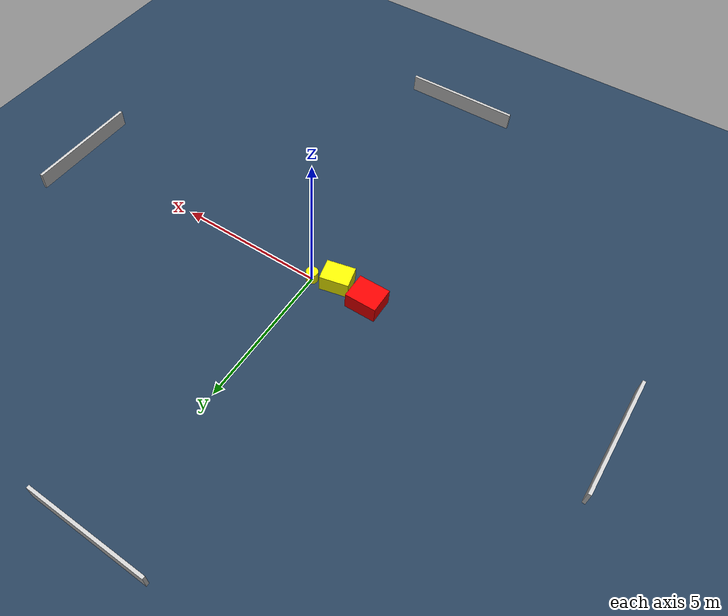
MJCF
<?xml version="1.0" ?>
<mujoco model="generated_environment">
  <option timestep="0.01" integrator="RK4" cone="elliptic"/>
  <default>
    <geom density="1"/>
  </default>
  <asset>
    <texture builtin="gradient" height="3072" name="skybox" rgb1="0.3 0.5 0.7" rgb2="0 0 0" type="skybox" width="512"/>
    <texture builtin="checker" height="300" name="groundplane" rgb1="0.2 0.3 0.4" rgb2="0.1 0.2 0.3" type="2d" width="300"/>
    <material name="groundplane" reflectance="0.2" texrepeat="5 5" texture="groundplane"/>
  </asset>
  <worldbody>
    <light dir="0 0 -1" directional="true" pos="0 0 1.5"/>
    <geom condim="3" friction="0.5 0.005 0.001" material="groundplane" name="floor" pos="0 0 0" size="0 0 0.05" type="plane"/>
    <body name="walls">
      <geom name="wall_1" condim="4" pos="-10.0 0.0 0.3" rgba="0.800000011920929 0.800000011920929 0.800000011920929 1.0" size="0.05 2.0 0.3" type="box"/>
      <geom name="wall_2" condim="4" pos="10.0 0.0 0.3" rgba="0.800000011920929 0.800000011920929 0.800000011920929 1.0" size="0.05 2.0 0.3" type="box"/>
      <geom name="wall_3" condim="4" pos="0.0 -10.0 0.3" rgba="0.800000011920929 0.800000011920929 0.800000011920929 1.0" size="2.0 0.05 0.3" type="box"/>
      <geom name="wall_4" condim="4" pos="0.0 10.0 0.3" rgba="0.800000011920929 0.800000011920929 0.800000011920929 1.0" size="2.0 0.05 0.3" type="box"/>
    </body>
    <body name="robot">
      <joint name="joint_x" type="slide" pos="0 0 0" axis="1 0 0"/>
      <joint name="joint_y" type="slide" pos="0 0 0" axis="0 1 0"/>
      <geom name="robot" type="cylinder" pos="0.0 0.0 0.2" size="0.2 0.2 0.0" mass="5.0" friction="1.0 0.005 0.0001" condim="4" rgba="1.0 1.0 0.0 1.0"/>
    </body>
    <body name="obstacle_1_movable">
      <geom name="obstacle_1_movable" condim="4" pos="-0.7756864387815597 -0.27933069141285183 0.3" euler="0 0 103.16479238999321" friction="0.0 0.005 0.001" rgba="1.0 1.0 0.0 1.0" size="0.3677399287593213 0.4790643636522131 0.3" type="box" mass="0.1"/>
      <joint type="free"/>
    </body>
    <body name="obstacle_2_static">
      <geom name="obstacle_2_static" condim="4" pos="-1.9494514608973867 -0.15770735367610025 0.3" euler="0 0 0.33054312435605304" friction="0.0 0.005 0.001" rgba="1.0 0.0 0.0 1.0" size="0.5285220942378694 0.4398712500715177 0.3" type="box"/>
    </body>
  </worldbody>
  <actuator>
    <motor name="actuator_x" joint="joint_x" gear="1" ctrlrange="-1 1"/>
    <motor name="actuator_y" joint="joint_y" gear="1" ctrlrange="-1 1"/>
  </actuator>
</mujoco>
